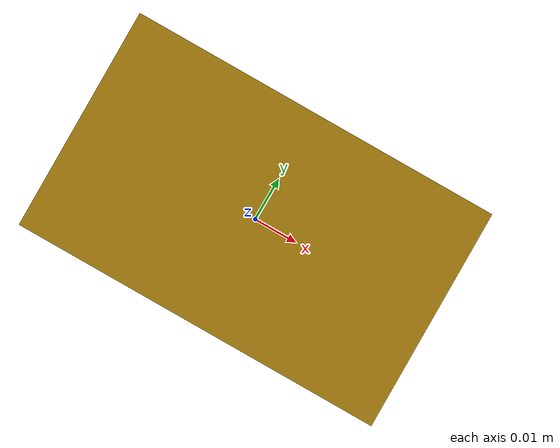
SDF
<?xml version="1.0"?>
<sdf version="1.9">
  <model name="pave_jaune">
    <link name="corps">
      <pose>0 0 0.020000 0 0 0</pose>
      <inertial>
        <mass>0.030000</mass>
        <inertia>
          <ixx>0.000006250</ixx><iyy>0.000010250</iyy><izz>0.000008500</izz>
          <ixy>0</ixy><ixz>0</ixz><iyz>0</iyz>
        </inertia>
      </inertial>
      <collision name="collision">
        <geometry><box><size>0.050000 0.030000 0.040000</size></box></geometry>
        <surface>
          <friction><ode><mu>1.0</mu><mu2>1.0</mu2></ode></friction>
        </surface>
      </collision>
      <visual name="visual">
        <geometry><box><size>0.050000 0.030000 0.040000</size></box></geometry>
        <material>
          <ambient>0.647 0.486 0.039 1</ambient>
          <diffuse>0.647 0.486 0.039 1</diffuse>
          <specular>0.1 0.1 0.1 1</specular>
        </material>
      </visual>
    </link>
  </model>
</sdf>
